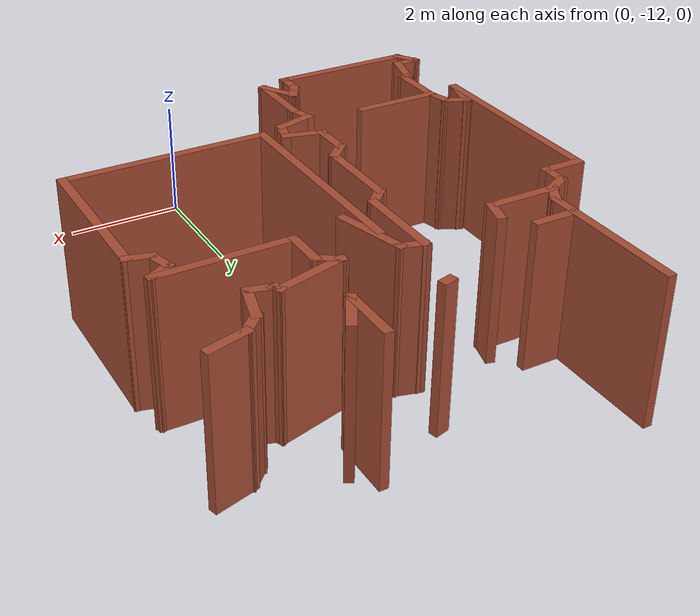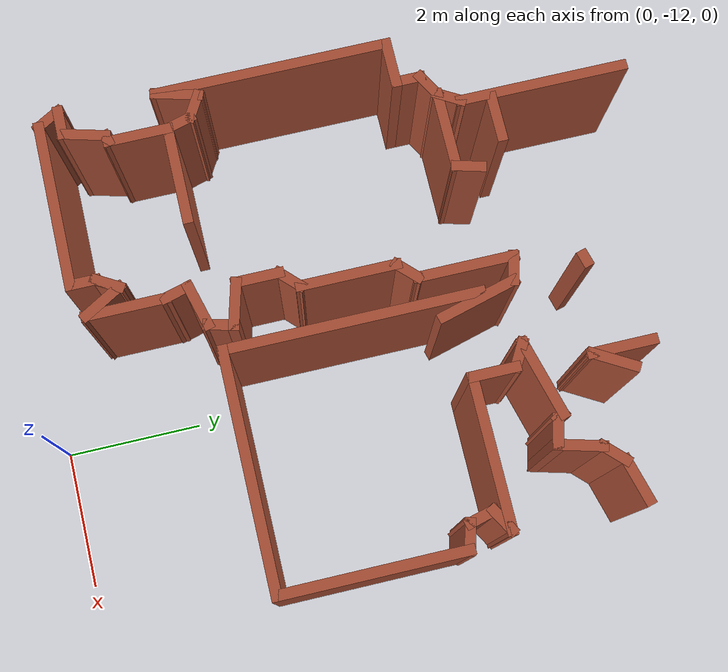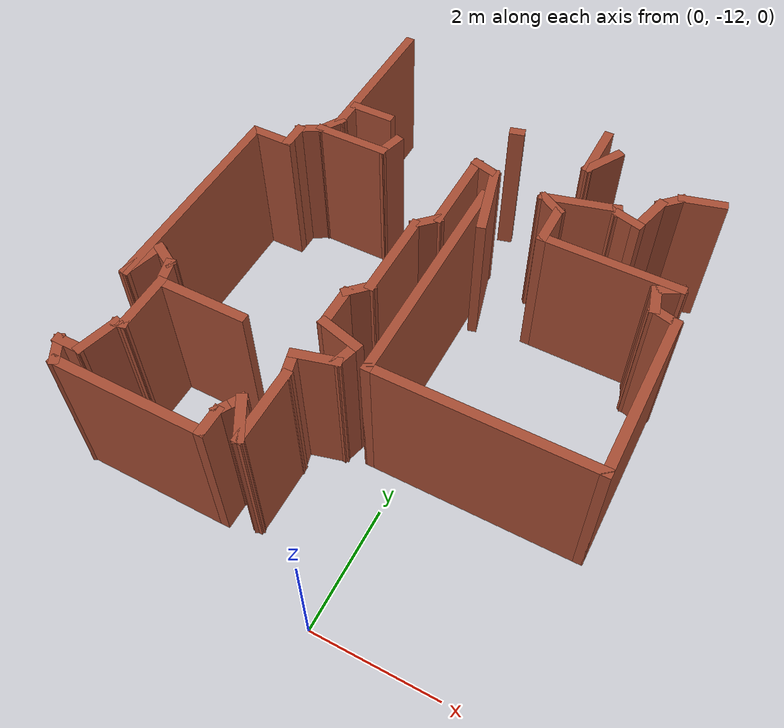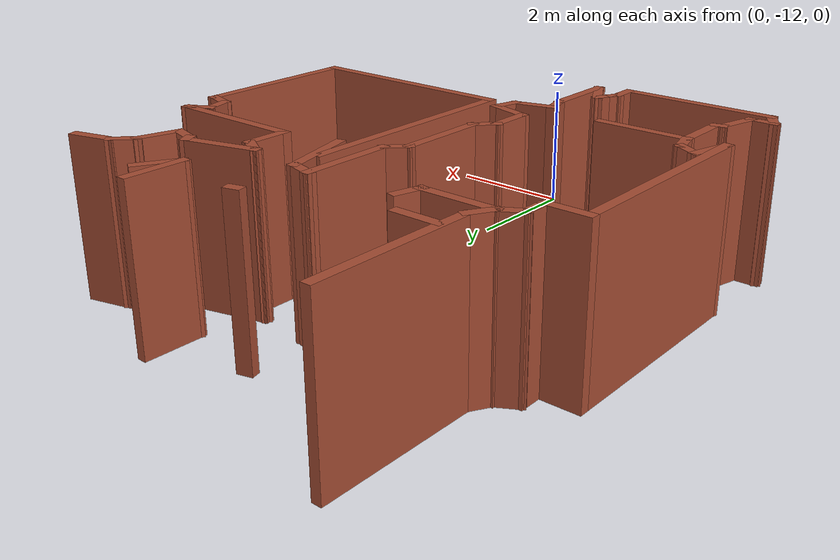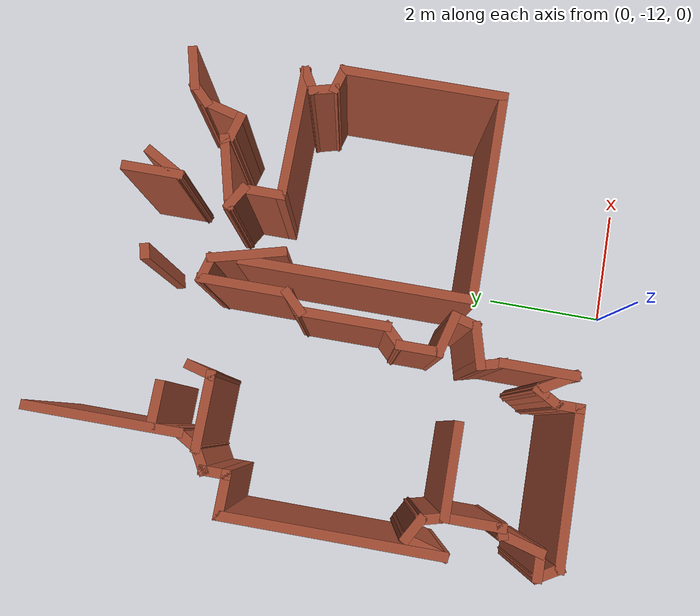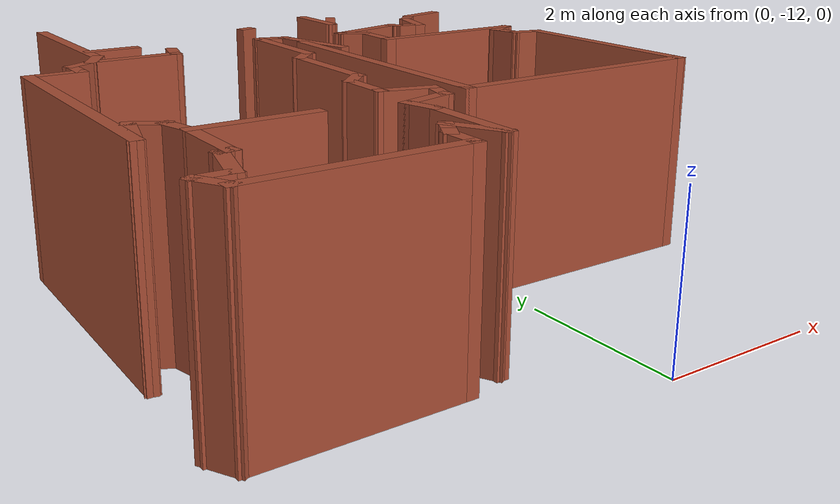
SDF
<sdf version="1.6">
 <model name="map_10">
  <pose>-0.789034 -4.23581 0 0 -0 0</pose>
  <link name="Wall_133">
   <collision name="Wall_133_Collision">
    <geometry><box><size>0.75 0.15 2.5</size></box></geometry>
    <pose>0 0 1.25 0 -0 0</pose>
   </collision>
   <visual name="Wall_133_Visual">
    <pose>0 0 1.25 0 -0 0</pose>
    <geometry><box><size>0.75 0.15 2.5</size></box></geometry>
    <material>
     <script><uri>file://media/materials/scripts/gazebo.material</uri><name>Gazebo/Bricks</name></script>
     <ambient>1 1 1 1</ambient>
    </material>
    <meta><layer>0</layer></meta>
   </visual>
   <pose>-2.13456 -0.630637 0 0 -0 0</pose>
  </link>
  <link name="Wall_138">
   <collision name="Wall_138_Collision">
    <geometry><box><size>1.25 0.15 2.5</size></box></geometry>
    <pose>0 0 1.25 0 -0 0</pose>
   </collision>
   <visual name="Wall_138_Visual">
    <pose>0 0 1.25 0 -0 0</pose>
    <geometry><box><size>1.25 0.15 2.5</size></box></geometry>
    <material>
     <script><uri>file://media/materials/scripts/gazebo.material</uri><name>Gazebo/Bricks</name></script>
     <ambient>1 1 1 1</ambient>
    </material>
    <meta><layer>0</layer></meta>
   </visual>
   <pose>-2.10512 -1.36197 0 0 -0 0</pose>
  </link>
  <link name="Wall_139">
   <collision name="Wall_139_Collision">
    <geometry><box><size>0.5 0.15 2.5</size></box></geometry>
    <pose>0 0 1.25 0 -0 0</pose>
   </collision>
   <visual name="Wall_139_Visual">
    <pose>0 0 1.25 0 -0 0</pose>
    <geometry><box><size>0.5 0.15 2.5</size></box></geometry>
    <material>
     <script><uri>file://media/materials/scripts/gazebo.material</uri><name>Gazebo/Bricks</name></script>
     <ambient>1 1 1 1</ambient>
    </material>
    <meta><layer>0</layer></meta>
   </visual>
   <pose>-1.50982 -1.19293 0 0 -0 1.309</pose>
  </link>
  <link name="Wall_143">
   <collision name="Wall_143_Collision">
    <geometry><box><size>1.5 0.15 2.5</size></box></geometry>
    <pose>0 0 1.25 0 -0 0</pose>
   </collision>
   <visual name="Wall_143_Visual">
    <pose>0 0 1.25 0 -0 0</pose>
    <geometry><box><size>1.5 0.15 2.5</size></box></geometry>
    <material>
     <script><uri>file://media/materials/scripts/gazebo.material</uri><name>Gazebo/Bricks</name></script>
     <ambient>1 1 1 1</ambient>
    </material>
    <meta><layer>0</layer></meta>
   </visual>
   <pose>-2.33424 -5.17049 0 0 -0 0</pose>
  </link>
  <link name="Wall_30">
   <collision name="Wall_30_Collision">
    <geometry><box><size>2.5 0.15 2.5</size></box></geometry>
    <pose>0 0 1.25 0 -0 0</pose>
   </collision>
   <visual name="Wall_30_Visual">
    <pose>0 0 1.25 0 -0 0</pose>
    <geometry><box><size>2.5 0.15 2.5</size></box></geometry>
    <material>
     <script><uri>file://media/materials/scripts/gazebo.material</uri><name>Gazebo/Bricks</name></script>
     <ambient>1 1 1 1</ambient>
    </material>
    <meta><layer>0</layer></meta>
   </visual>
   <pose>-2.48012 0.116139 0 0 -0 -1.5708</pose>
  </link>
  <link name="Wall_31">
   <collision name="Wall_31_Collision">
    <geometry><box><size>0.5 0.15 2.5</size></box></geometry>
    <pose>0 0 1.25 0 -0 0</pose>
   </collision>
   <visual name="Wall_31_Visual">
    <pose>0 0 1.25 0 -0 0</pose>
    <geometry><box><size>0.5 0.15 2.5</size></box></geometry>
    <material>
     <script><uri>file://media/materials/scripts/gazebo.material</uri><name>Gazebo/Bricks</name></script>
     <ambient>1 1 1 1</ambient>
    </material>
    <meta><layer>0</layer></meta>
   </visual>
   <pose>-2.56761 -1.21042 0 0 -0 -2.0944</pose>
  </link>
  <link name="Wall_32">
   <collision name="Wall_32_Collision">
    <geometry><box><size>0.5 0.15 2.5</size></box></geometry>
    <pose>0 0 1.25 0 -0 0</pose>
   </collision>
   <visual name="Wall_32_Visual">
    <pose>0 0 1.25 0 -0 0</pose>
    <geometry><box><size>0.5 0.15 2.5</size></box></geometry>
    <material>
     <script><uri>file://media/materials/scripts/gazebo.material</uri><name>Gazebo/Bricks</name></script>
     <ambient>1 1 1 1</ambient>
    </material>
    <meta><layer>0</layer></meta>
   </visual>
   <pose>-2.80667 -1.44947 0 0 -0 -2.61799</pose>
  </link>
  <link name="Wall_33">
   <collision name="Wall_33_Collision">
    <geometry><box><size>0.5 0.15 2.5</size></box></geometry>
    <pose>0 0 1.25 0 -0 0</pose>
   </collision>
   <visual name="Wall_33_Visual">
    <pose>0 0 1.25 0 -0 0</pose>
    <geometry><box><size>0.5 0.15 2.5</size></box></geometry>
    <material>
     <script><uri>file://media/materials/scripts/gazebo.material</uri><name>Gazebo/Bricks</name></script>
     <ambient>1 1 1 1</ambient>
    </material>
    <meta><layer>0</layer></meta>
   </visual>
   <pose>-2.95822 -1.71197 0 0 -0 -1.5708</pose>
  </link>
  <link name="Wall_36">
   <collision name="Wall_36_Collision">
    <geometry><box><size>0.75 0.15 2.5</size></box></geometry>
    <pose>0 0 1.25 0 -0 0</pose>
   </collision>
   <visual name="Wall_36_Visual">
    <pose>0 0 1.25 0 -0 0</pose>
    <geometry><box><size>0.75 0.15 2.5</size></box></geometry>
    <material>
     <script><uri>file://media/materials/scripts/gazebo.material</uri><name>Gazebo/Bricks</name></script>
     <ambient>1 1 1 1</ambient>
    </material>
    <meta><layer>0</layer></meta>
   </visual>
   <pose>-3.25822 -1.88697 0 0 -0 3.14159</pose>
  </link>
  <link name="Wall_37">
   <collision name="Wall_37_Collision">
    <geometry><box><size>3.5 0.15 2.5</size></box></geometry>
    <pose>0 0 1.25 0 -0 0</pose>
   </collision>
   <visual name="Wall_37_Visual">
    <pose>0 0 1.25 0 -0 0</pose>
    <geometry><box><size>3.5 0.15 2.5</size></box></geometry>
    <material>
     <script><uri>file://media/materials/scripts/gazebo.material</uri><name>Gazebo/Bricks</name></script>
     <ambient>1 1 1 1</ambient>
    </material>
    <meta><layer>0</layer></meta>
   </visual>
   <pose>-3.55822 -3.56197 0 0 -0 -1.5708</pose>
  </link>
  <link name="Wall_38">
   <collision name="Wall_38_Collision">
    <geometry><box><size>0.75 0.15 2.5</size></box></geometry>
    <pose>0 0 1.25 0 -0 0</pose>
   </collision>
   <visual name="Wall_38_Visual">
    <pose>0 0 1.25 0 -0 0</pose>
    <geometry><box><size>0.75 0.15 2.5</size></box></geometry>
    <material>
     <script><uri>file://media/materials/scripts/gazebo.material</uri><name>Gazebo/Bricks</name></script>
     <ambient>1 1 1 1</ambient>
    </material>
    <meta><layer>0</layer></meta>
   </visual>
   <pose>-3.48058 -4.94719 0 0 -0 1.309</pose>
  </link>
  <link name="Wall_39">
   <collision name="Wall_39_Collision">
    <geometry><box><size>0.5 0.15 2.5</size></box></geometry>
    <pose>0 0 1.25 0 -0 0</pose>
   </collision>
   <visual name="Wall_39_Visual">
    <pose>0 0 1.25 0 -0 0</pose>
    <geometry><box><size>0.5 0.15 2.5</size></box></geometry>
    <material>
     <script><uri>file://media/materials/scripts/gazebo.material</uri><name>Gazebo/Bricks</name></script>
     <ambient>1 1 1 1</ambient>
    </material>
    <meta><layer>0</layer></meta>
   </visual>
   <pose>-3.25138 -4.74491 0 0 -0 -0.523599</pose>
  </link>
  <link name="Wall_40">
   <collision name="Wall_40_Collision">
    <geometry><box><size>0.5 0.15 2.5</size></box></geometry>
    <pose>0 0 1.25 0 -0 0</pose>
   </collision>
   <visual name="Wall_40_Visual">
    <pose>0 0 1.25 0 -0 0</pose>
    <geometry><box><size>0.5 0.15 2.5</size></box></geometry>
    <material>
     <script><uri>file://media/materials/scripts/gazebo.material</uri><name>Gazebo/Bricks</name></script>
     <ambient>1 1 1 1</ambient>
    </material>
    <meta><layer>0</layer></meta>
   </visual>
   <pose>-3.05453 -5.00145 0 0 -0 -1.309</pose>
  </link>
  <link name="Wall_41">
   <collision name="Wall_41_Collision">
    <geometry><box><size>1 0.15 2.5</size></box></geometry>
    <pose>0 0 1.25 0 -0 0</pose>
   </collision>
   <visual name="Wall_41_Visual">
    <pose>0 0 1.25 0 -0 0</pose>
    <geometry><box><size>1 0.15 2.5</size></box></geometry>
    <material>
     <script><uri>file://media/materials/scripts/gazebo.material</uri><name>Gazebo/Bricks</name></script>
     <ambient>1 1 1 1</ambient>
    </material>
    <meta><layer>0</layer></meta>
   </visual>
   <pose>-3.00924 -5.59549 0 0 -0 -1.5708</pose>
  </link>
  <link name="Wall_44">
   <collision name="Wall_44_Collision">
    <geometry><box><size>0.25 0.15 2.5</size></box></geometry>
    <pose>0 0 1.25 0 -0 0</pose>
   </collision>
   <visual name="Wall_44_Visual">
    <pose>0 0 1.25 0 -0 0</pose>
    <geometry><box><size>0.25 0.15 2.5</size></box></geometry>
    <material>
     <script><uri>file://media/materials/scripts/gazebo.material</uri><name>Gazebo/Bricks</name></script>
     <ambient>1 1 1 1</ambient>
    </material>
    <meta><layer>0</layer></meta>
   </visual>
   <pose>-3.05753 -6.03343 0 0 -0 -2.87979</pose>
  </link>
  <link name="Wall_45">
   <collision name="Wall_45_Collision">
    <geometry><box><size>0.75 0.15 2.5</size></box></geometry>
    <pose>0 0 1.25 0 -0 0</pose>
   </collision>
   <visual name="Wall_45_Visual">
    <pose>0 0 1.25 0 -0 0</pose>
    <geometry><box><size>0.75 0.15 2.5</size></box></geometry>
    <material>
     <script><uri>file://media/materials/scripts/gazebo.material</uri><name>Gazebo/Bricks</name></script>
     <ambient>1 1 1 1</ambient>
    </material>
    <meta><layer>0</layer></meta>
   </visual>
   <pose>-3.18348 -6.33615 0 0 -0 -1.8326</pose>
  </link>
  <link name="Wall_46">
   <collision name="Wall_46_Collision">
    <geometry><box><size>0.5 0.15 2.5</size></box></geometry>
    <pose>0 0 1.25 0 -0 0</pose>
   </collision>
   <visual name="Wall_46_Visual">
    <pose>0 0 1.25 0 -0 0</pose>
    <geometry><box><size>0.5 0.15 2.5</size></box></geometry>
    <material>
     <script><uri>file://media/materials/scripts/gazebo.material</uri><name>Gazebo/Bricks</name></script>
     <ambient>1 1 1 1</ambient>
    </material>
    <meta><layer>0</layer></meta>
   </visual>
   <pose>-3.43612 -6.62593 0 0 -0 3.14159</pose>
  </link>
  <link name="Wall_47">
   <collision name="Wall_47_Collision">
    <geometry><box><size>0.5 0.15 2.5</size></box></geometry>
    <pose>0 0 1.25 0 -0 0</pose>
   </collision>
   <visual name="Wall_47_Visual">
    <pose>0 0 1.25 0 -0 0</pose>
    <geometry><box><size>0.5 0.15 2.5</size></box></geometry>
    <material>
     <script><uri>file://media/materials/scripts/gazebo.material</uri><name>Gazebo/Bricks</name></script>
     <ambient>1 1 1 1</ambient>
    </material>
    <meta><layer>0</layer></meta>
   </visual>
   <pose>-3.52362 -6.77748 0 0 -0 -1.0472</pose>
  </link>
  <link name="Wall_48">
   <collision name="Wall_48_Collision">
    <geometry><box><size>2.5 0.15 2.5</size></box></geometry>
    <pose>0 0 1.25 0 -0 0</pose>
   </collision>
   <visual name="Wall_48_Visual">
    <pose>0 0 1.25 0 -0 0</pose>
    <geometry><box><size>2.5 0.15 2.5</size></box></geometry>
    <material>
     <script><uri>file://media/materials/scripts/gazebo.material</uri><name>Gazebo/Bricks</name></script>
     <ambient>1 1 1 1</ambient>
    </material>
    <meta><layer>0</layer></meta>
   </visual>
   <pose>-2.26112 -6.92903 0 0 -0 0</pose>
  </link>
  <link name="Wall_49">
   <collision name="Wall_49_Collision">
    <geometry><box><size>0.5 0.15 2.5</size></box></geometry>
    <pose>0 0 1.25 0 -0 0</pose>
   </collision>
   <visual name="Wall_49_Visual">
    <pose>0 0 1.25 0 -0 0</pose>
    <geometry><box><size>0.5 0.15 2.5</size></box></geometry>
    <material>
     <script><uri>file://media/materials/scripts/gazebo.material</uri><name>Gazebo/Bricks</name></script>
     <ambient>1 1 1 1</ambient>
    </material>
    <meta><layer>0</layer></meta>
   </visual>
   <pose>-1.08612 -6.75404 0 0 -0 1.5708</pose>
  </link>
  <link name="Wall_50">
   <collision name="Wall_50_Collision">
    <geometry><box><size>0.25 0.15 2.5</size></box></geometry>
    <pose>0 0 1.25 0 -0 0</pose>
   </collision>
   <visual name="Wall_50_Visual">
    <pose>0 0 1.25 0 -0 0</pose>
    <geometry><box><size>0.25 0.15 2.5</size></box></geometry>
    <material>
     <script><uri>file://media/materials/scripts/gazebo.material</uri><name>Gazebo/Bricks</name></script>
     <ambient>1 1 1 1</ambient>
    </material>
    <meta><layer>0</layer></meta>
   </visual>
   <pose>-1.06112 -6.53573 0 0 -0 1.0472</pose>
  </link>
  <link name="Wall_53">
   <collision name="Wall_53_Collision">
    <geometry><box><size>0.5 0.15 2.5</size></box></geometry>
    <pose>0 0 1.25 0 -0 0</pose>
   </collision>
   <visual name="Wall_53_Visual">
    <pose>0 0 1.25 0 -0 0</pose>
    <geometry><box><size>0.5 0.15 2.5</size></box></geometry>
    <material>
     <script><uri>file://media/materials/scripts/gazebo.material</uri><name>Gazebo/Bricks</name></script>
     <ambient>1 1 1 1</ambient>
    </material>
    <meta><layer>0</layer></meta>
   </visual>
   <pose>-0.998621 -6.42748 0 0 -0 1.0472</pose>
  </link>
  <link name="Wall_54">
   <collision name="Wall_54_Collision">
    <geometry><box><size>0.75 0.15 2.5</size></box></geometry>
    <pose>0 0 1.25 0 -0 0</pose>
   </collision>
   <visual name="Wall_54_Visual">
    <pose>0 0 1.25 0 -0 0</pose>
    <geometry><box><size>0.75 0.15 2.5</size></box></geometry>
    <material>
     <script><uri>file://media/materials/scripts/gazebo.material</uri><name>Gazebo/Bricks</name></script>
     <ambient>1 1 1 1</ambient>
    </material>
    <meta><layer>0</layer></meta>
   </visual>
   <pose>-0.761121 -6.53573 0 0 -0 -1.0472</pose>
  </link>
  <link name="Wall_55">
   <collision name="Wall_55_Collision">
    <geometry><box><size>1.25 0.15 2.5</size></box></geometry>
    <pose>0 0 1.25 0 -0 0</pose>
   </collision>
   <visual name="Wall_55_Visual">
    <pose>0 0 1.25 0 -0 0</pose>
    <geometry><box><size>1.25 0.15 2.5</size></box></geometry>
    <material>
     <script><uri>file://media/materials/scripts/gazebo.material</uri><name>Gazebo/Bricks</name></script>
     <ambient>1 1 1 1</ambient>
    </material>
    <meta><layer>0</layer></meta>
   </visual>
   <pose>-0.611121 -6.24554 0 0 -0 1.5708</pose>
  </link>
  <link name="Wall_56">
   <collision name="Wall_56_Collision">
    <geometry><box><size>0.5 0.15 2.5</size></box></geometry>
    <pose>0 0 1.25 0 -0 0</pose>
   </collision>
   <visual name="Wall_56_Visual">
    <pose>0 0 1.25 0 -0 0</pose>
    <geometry><box><size>0.5 0.15 2.5</size></box></geometry>
    <material>
     <script><uri>file://media/materials/scripts/gazebo.material</uri><name>Gazebo/Bricks</name></script>
     <ambient>1 1 1 1</ambient>
    </material>
    <meta><layer>0</layer></meta>
   </visual>
   <pose>-0.656414 -5.5265 0 0 -0 1.8326</pose>
  </link>
  <link name="Wall_57">
   <collision name="Wall_57_Collision">
    <geometry><box><size>0.75 0.15 2.5</size></box></geometry>
    <pose>0 0 1.25 0 -0 0</pose>
   </collision>
   <visual name="Wall_57_Visual">
    <pose>0 0 1.25 0 -0 0</pose>
    <geometry><box><size>0.75 0.15 2.5</size></box></geometry>
    <material>
     <script><uri>file://media/materials/scripts/gazebo.material</uri><name>Gazebo/Bricks</name></script>
     <ambient>1 1 1 1</ambient>
    </material>
    <meta><layer>0</layer></meta>
   </visual>
   <pose>-0.41193 -5.27982 0 0 -0 0.261799</pose>
  </link>
  <link name="Wall_58">
   <collision name="Wall_58_Collision">
    <geometry><box><size>0.5 0.15 2.5</size></box></geometry>
    <pose>0 0 1.25 0 -0 0</pose>
   </collision>
   <visual name="Wall_58_Visual">
    <pose>0 0 1.25 0 -0 0</pose>
    <geometry><box><size>0.5 0.15 2.5</size></box></geometry>
    <material>
     <script><uri>file://media/materials/scripts/gazebo.material</uri><name>Gazebo/Bricks</name></script>
     <ambient>1 1 1 1</ambient>
    </material>
    <meta><layer>0</layer></meta>
   </visual>
   <pose>-0.076859 -5.03314 0 0 -0 1.309</pose>
  </link>
  <link name="Wall_59">
   <collision name="Wall_59_Collision">
    <geometry><box><size>0.75 0.15 2.5</size></box></geometry>
    <pose>0 0 1.25 0 -0 0</pose>
   </collision>
   <visual name="Wall_59_Visual">
    <pose>0 0 1.25 0 -0 0</pose>
    <geometry><box><size>0.75 0.15 2.5</size></box></geometry>
    <material>
     <script><uri>file://media/materials/scripts/gazebo.material</uri><name>Gazebo/Bricks</name></script>
     <ambient>1 1 1 1</ambient>
    </material>
    <meta><layer>0</layer></meta>
   </visual>
   <pose>-0.321343 -4.78646 0 0 -0 2.87979</pose>
  </link>
  <link name="Wall_60">
   <collision name="Wall_60_Collision">
    <geometry><box><size>0.75 0.15 2.5</size></box></geometry>
    <pose>0 0 1.25 0 -0 0</pose>
   </collision>
   <visual name="Wall_60_Visual">
    <pose>0 0 1.25 0 -0 0</pose>
    <geometry><box><size>0.75 0.15 2.5</size></box></geometry>
    <material>
     <script><uri>file://media/materials/scripts/gazebo.material</uri><name>Gazebo/Bricks</name></script>
     <ambient>1 1 1 1</ambient>
    </material>
    <meta><layer>0</layer></meta>
   </visual>
   <pose>-0.611121 -4.40881 0 0 -0 1.5708</pose>
  </link>
  <link name="Wall_61">
   <collision name="Wall_61_Collision">
    <geometry><box><size>0.5 0.15 2.5</size></box></geometry>
    <pose>0 0 1.25 0 -0 0</pose>
   </collision>
   <visual name="Wall_61_Visual">
    <pose>0 0 1.25 0 -0 0</pose>
    <geometry><box><size>0.5 0.15 2.5</size></box></geometry>
    <material>
     <script><uri>file://media/materials/scripts/gazebo.material</uri><name>Gazebo/Bricks</name></script>
     <ambient>1 1 1 1</ambient>
    </material>
    <meta><layer>0</layer></meta>
   </visual>
   <pose>-0.487377 -3.98507 0 0 -0 0.785398</pose>
  </link>
  <link name="Wall_62">
   <collision name="Wall_62_Collision">
    <geometry><box><size>1.5 0.15 2.5</size></box></geometry>
    <pose>0 0 1.25 0 -0 0</pose>
   </collision>
   <visual name="Wall_62_Visual">
    <pose>0 0 1.25 0 -0 0</pose>
    <geometry><box><size>1.5 0.15 2.5</size></box></geometry>
    <material>
     <script><uri>file://media/materials/scripts/gazebo.material</uri><name>Gazebo/Bricks</name></script>
     <ambient>1 1 1 1</ambient>
    </material>
    <meta><layer>0</layer></meta>
   </visual>
   <pose>-0.363634 -3.18632 0 0 -0 1.5708</pose>
  </link>
  <link name="Wall_63">
   <collision name="Wall_63_Collision">
    <geometry><box><size>0.5 0.15 2.5</size></box></geometry>
    <pose>0 0 1.25 0 -0 0</pose>
   </collision>
   <visual name="Wall_63_Visual">
    <pose>0 0 1.25 0 -0 0</pose>
    <geometry><box><size>0.5 0.15 2.5</size></box></geometry>
    <material>
     <script><uri>file://media/materials/scripts/gazebo.material</uri><name>Gazebo/Bricks</name></script>
     <ambient>1 1 1 1</ambient>
    </material>
    <meta><layer>0</layer></meta>
   </visual>
   <pose>-0.23989 -2.38758 0 0 -0 0.785398</pose>
  </link>
  <link name="Wall_64">
   <collision name="Wall_64_Collision">
    <geometry><box><size>1.5 0.15 2.5</size></box></geometry>
    <pose>0 0 1.25 0 -0 0</pose>
   </collision>
   <visual name="Wall_64_Visual">
    <pose>0 0 1.25 0 -0 0</pose>
    <geometry><box><size>1.5 0.15 2.5</size></box></geometry>
    <material>
     <script><uri>file://media/materials/scripts/gazebo.material</uri><name>Gazebo/Bricks</name></script>
     <ambient>1 1 1 1</ambient>
    </material>
    <meta><layer>0</layer></meta>
   </visual>
   <pose>-0.116146 -1.58884 0 0 -0 1.5708</pose>
  </link>
  <link name="Wall_65">
   <collision name="Wall_65_Collision">
    <geometry><box><size>0.5 0.15 2.5</size></box></geometry>
    <pose>0 0 1.25 0 -0 0</pose>
   </collision>
   <visual name="Wall_65_Visual">
    <pose>0 0 1.25 0 -0 0</pose>
    <geometry><box><size>0.5 0.15 2.5</size></box></geometry>
    <material>
     <script><uri>file://media/materials/scripts/gazebo.material</uri><name>Gazebo/Bricks</name></script>
     <ambient>1 1 1 1</ambient>
    </material>
    <meta><layer>0</layer></meta>
   </visual>
   <pose>0.052891 -0.959129 0 0 -0 -0.261799</pose>
  </link>
  <link name="Wall_66">
   <collision name="Wall_66_Collision">
    <geometry><box><size>1.25 0.15 2.5</size></box></geometry>
    <pose>0 0 1.25 0 -0 0</pose>
   </collision>
   <visual name="Wall_66_Visual">
    <pose>0 0 1.25 0 -0 0</pose>
    <geometry><box><size>1.25 0.15 2.5</size></box></geometry>
    <material>
     <script><uri>file://media/materials/scripts/gazebo.material</uri><name>Gazebo/Bricks</name></script>
     <ambient>1 1 1 1</ambient>
    </material>
    <meta><layer>0</layer></meta>
   </visual>
   <pose>0.364278 -1.53568 0 0 -0 -1.309</pose>
  </link>
  <link name="Wall_68">
   <collision name="Wall_68_Collision">
    <geometry><box><size>3.75 0.15 2.5</size></box></geometry>
    <pose>0 0 1.25 0 -0 0</pose>
   </collision>
   <visual name="Wall_68_Visual">
    <pose>0 0 1.25 0 -0 0</pose>
    <geometry><box><size>3.75 0.15 2.5</size></box></geometry>
    <material>
     <script><uri>file://media/materials/scripts/gazebo.material</uri><name>Gazebo/Bricks</name></script>
     <ambient>1 1 1 1</ambient>
    </material>
    <meta><layer>0</layer></meta>
   </visual>
   <pose>0.271717 -3.28647 0 0 -0 -1.5708</pose>
  </link>
  <link name="Wall_69">
   <collision name="Wall_69_Collision">
    <geometry><box><size>3.5 0.15 2.5</size></box></geometry>
    <pose>0 0 1.25 0 -0 0</pose>
   </collision>
   <visual name="Wall_69_Visual">
    <pose>0 0 1.25 0 -0 0</pose>
    <geometry><box><size>3.5 0.15 2.5</size></box></geometry>
    <material>
     <script><uri>file://media/materials/scripts/gazebo.material</uri><name>Gazebo/Bricks</name></script>
     <ambient>1 1 1 1</ambient>
    </material>
    <meta><layer>0</layer></meta>
   </visual>
   <pose>1.94672 -5.08647 0 0 -0 0</pose>
  </link>
  <link name="Wall_70">
   <collision name="Wall_70_Collision">
    <geometry><box><size>2.75 0.15 2.5</size></box></geometry>
    <pose>0 0 1.25 0 -0 0</pose>
   </collision>
   <visual name="Wall_70_Visual">
    <pose>0 0 1.25 0 -0 0</pose>
    <geometry><box><size>2.75 0.15 2.5</size></box></geometry>
    <material>
     <script><uri>file://media/materials/scripts/gazebo.material</uri><name>Gazebo/Bricks</name></script>
     <ambient>1 1 1 1</ambient>
    </material>
    <meta><layer>0</layer></meta>
   </visual>
   <pose>3.62172 -3.78647 0 0 -0 1.5708</pose>
  </link>
  <link name="Wall_71">
   <collision name="Wall_71_Collision">
    <geometry><box><size>0.5 0.15 2.5</size></box></geometry>
    <pose>0 0 1.25 0 -0 0</pose>
   </collision>
   <visual name="Wall_71_Visual">
    <pose>0 0 1.25 0 -0 0</pose>
    <geometry><box><size>0.5 0.15 2.5</size></box></geometry>
    <material>
     <script><uri>file://media/materials/scripts/gazebo.material</uri><name>Gazebo/Bricks</name></script>
     <ambient>1 1 1 1</ambient>
    </material>
    <meta><layer>0</layer></meta>
   </visual>
   <pose>3.45268 -2.44117 0 0 -0 2.87979</pose>
  </link>
  <link name="Wall_72">
   <collision name="Wall_72_Collision">
    <geometry><box><size>0.5 0.15 2.5</size></box></geometry>
    <pose>0 0 1.25 0 -0 0</pose>
   </collision>
   <visual name="Wall_72_Visual">
    <pose>0 0 1.25 0 -0 0</pose>
    <geometry><box><size>0.5 0.15 2.5</size></box></geometry>
    <material>
     <script><uri>file://media/materials/scripts/gazebo.material</uri><name>Gazebo/Bricks</name></script>
     <ambient>1 1 1 1</ambient>
    </material>
    <meta><layer>0</layer></meta>
   </visual>
   <pose>3.23835 -2.22684 0 0 -0 1.8326</pose>
  </link>
  <link name="Wall_73">
   <collision name="Wall_73_Collision">
    <geometry><box><size>0.5 0.15 2.5</size></box></geometry>
    <pose>0 0 1.25 0 -0 0</pose>
   </collision>
   <visual name="Wall_73_Visual">
    <pose>0 0 1.25 0 -0 0</pose>
    <geometry><box><size>0.5 0.15 2.5</size></box></geometry>
    <material>
     <script><uri>file://media/materials/scripts/gazebo.material</uri><name>Gazebo/Bricks</name></script>
     <ambient>1 1 1 1</ambient>
    </material>
    <meta><layer>0</layer></meta>
   </visual>
   <pose>3.34461 -1.97031 0 0 -0 0.523599</pose>
  </link>
  <link name="Wall_74">
   <collision name="Wall_74_Collision">
    <geometry><box><size>2.25 0.15 2.5</size></box></geometry>
    <pose>0 0 1.25 0 -0 0</pose>
   </collision>
   <visual name="Wall_74_Visual">
    <pose>0 0 1.25 0 -0 0</pose>
    <geometry><box><size>2.25 0.15 2.5</size></box></geometry>
    <material>
     <script><uri>file://media/materials/scripts/gazebo.material</uri><name>Gazebo/Bricks</name></script>
     <ambient>1 1 1 1</ambient>
    </material>
    <meta><layer>0</layer></meta>
   </visual>
   <pose>2.44617 -1.88281 0 0 -0 3.14159</pose>
  </link>
  <link name="Wall_75">
   <collision name="Wall_75_Collision">
    <geometry><box><size>0.75 0.15 2.5</size></box></geometry>
    <pose>0 0 1.25 0 -0 0</pose>
   </collision>
   <visual name="Wall_75_Visual">
    <pose>0 0 1.25 0 -0 0</pose>
    <geometry><box><size>0.75 0.15 2.5</size></box></geometry>
    <material>
     <script><uri>file://media/materials/scripts/gazebo.material</uri><name>Gazebo/Bricks</name></script>
     <ambient>1 1 1 1</ambient>
    </material>
    <meta><layer>0</layer></meta>
   </visual>
   <pose>1.39617 -1.58281 0 0 -0 1.5708</pose>
  </link>
  <link name="Wall_76">
   <collision name="Wall_76_Collision">
    <geometry><box><size>0.5 0.15 2.5</size></box></geometry>
    <pose>0 0 1.25 0 -0 0</pose>
   </collision>
   <visual name="Wall_76_Visual">
    <pose>0 0 1.25 0 -0 0</pose>
    <geometry><box><size>0.5 0.15 2.5</size></box></geometry>
    <material>
     <script><uri>file://media/materials/scripts/gazebo.material</uri><name>Gazebo/Bricks</name></script>
     <ambient>1 1 1 1</ambient>
    </material>
    <meta><layer>0</layer></meta>
   </visual>
   <pose>1.24461 -1.19531 0 0 -0 2.61799</pose>
  </link>
  <link name="Wall_77">
   <collision name="Wall_77_Collision">
    <geometry><box><size>0.15 0.15 2.5</size></box></geometry>
    <pose>0 0 1.25 0 -0 0</pose>
   </collision>
   <visual name="Wall_77_Visual">
    <pose>0 0 1.25 0 -0 0</pose>
    <geometry><box><size>0.15 0.15 2.5</size></box></geometry>
    <material>
     <script><uri>file://media/materials/scripts/gazebo.material</uri><name>Gazebo/Bricks</name></script>
     <ambient>1 1 1 1</ambient>
    </material>
    <meta><layer>0</layer></meta>
   </visual>
   <pose>1.09306 -1.10781 0 0 -0 0</pose>
  </link>
  <link name="Wall_78">
   <collision name="Wall_78_Collision">
    <geometry><box><size>1.25 0.15 2.5</size></box></geometry>
    <pose>0 0 1.25 0 -0 0</pose>
   </collision>
   <visual name="Wall_78_Visual">
    <pose>0 0 1.25 0 -0 0</pose>
    <geometry><box><size>1.25 0.15 2.5</size></box></geometry>
    <material>
     <script><uri>file://media/materials/scripts/gazebo.material</uri><name>Gazebo/Bricks</name></script>
     <ambient>1 1 1 1</ambient>
    </material>
    <meta><layer>0</layer></meta>
   </visual>
   <pose>1.62432 -0.965458 0 0 -0 0.261799</pose>
  </link>
  <link name="Wall_79">
   <collision name="Wall_79_Collision">
    <geometry><box><size>0.25 0.15 2.5</size></box></geometry>
    <pose>0 0 1.25 0 -0 0</pose>
   </collision>
   <visual name="Wall_79_Visual">
    <pose>0 0 1.25 0 -0 0</pose>
    <geometry><box><size>0.25 0.15 2.5</size></box></geometry>
    <material>
     <script><uri>file://media/materials/scripts/gazebo.material</uri><name>Gazebo/Bricks</name></script>
     <ambient>1 1 1 1</ambient>
    </material>
    <meta><layer>0</layer></meta>
   </visual>
   <pose>2.18058 -0.866409 0 0 -0 -1.0472</pose>
  </link>
  <link name="Wall_80">
   <collision name="Wall_80_Collision">
    <geometry><box><size>0.5 0.15 2.5</size></box></geometry>
    <pose>0 0 1.25 0 -0 0</pose>
   </collision>
   <visual name="Wall_80_Visual">
    <pose>0 0 1.25 0 -0 0</pose>
    <geometry><box><size>0.5 0.15 2.5</size></box></geometry>
    <material>
     <script><uri>file://media/materials/scripts/gazebo.material</uri><name>Gazebo/Bricks</name></script>
     <ambient>1 1 1 1</ambient>
    </material>
    <meta><layer>0</layer></meta>
   </visual>
   <pose>2.37461 -0.955003 0 0 -0 -0.261799</pose>
  </link>
  <link name="Wall_81">
   <collision name="Wall_81_Collision">
    <geometry><box><size>0.75 0.15 2.5</size></box></geometry>
    <pose>0 0 1.25 0 -0 0</pose>
   </collision>
   <visual name="Wall_81_Visual">
    <pose>0 0 1.25 0 -0 0</pose>
    <geometry><box><size>0.75 0.15 2.5</size></box></geometry>
    <material>
     <script><uri>file://media/materials/scripts/gazebo.material</uri><name>Gazebo/Bricks</name></script>
     <ambient>1 1 1 1</ambient>
    </material>
    <meta><layer>0</layer></meta>
   </visual>
   <pose>2.62129 -0.710519 0 0 -0 1.309</pose>
  </link>
  <link name="Wall_82">
   <collision name="Wall_82_Collision">
    <geometry><box><size>0.5 0.15 2.5</size></box></geometry>
    <pose>0 0 1.25 0 -0 0</pose>
   </collision>
   <visual name="Wall_82_Visual">
    <pose>0 0 1.25 0 -0 0</pose>
    <geometry><box><size>0.5 0.15 2.5</size></box></geometry>
    <material>
     <script><uri>file://media/materials/scripts/gazebo.material</uri><name>Gazebo/Bricks</name></script>
     <ambient>1 1 1 1</ambient>
    </material>
    <meta><layer>0</layer></meta>
   </visual>
   <pose>2.82268 -0.296998 0 0 -0 0.785398</pose>
  </link>
  <link name="Wall_83">
   <collision name="Wall_83_Collision">
    <geometry><box><size>0.75 0.15 2.5</size></box></geometry>
    <pose>0 0 1.25 0 -0 0</pose>
   </collision>
   <visual name="Wall_83_Visual">
    <pose>0 0 1.25 0 -0 0</pose>
    <geometry><box><size>0.75 0.15 2.5</size></box></geometry>
    <material>
     <script><uri>file://media/materials/scripts/gazebo.material</uri><name>Gazebo/Bricks</name></script>
     <ambient>1 1 1 1</ambient>
    </material>
    <meta><layer>0</layer></meta>
   </visual>
   <pose>3.23621 -0.095608 0 0 -0 0.261799</pose>
  </link>
  <link name="Wall_88">
   <collision name="Wall_88_Collision">
    <geometry><box><size>0.75 0.15 2.5</size></box></geometry>
    <pose>0 0 1.25 0 -0 0</pose>
   </collision>
   <visual name="Wall_88_Visual">
    <pose>0 0 1.25 0 -0 0</pose>
    <geometry><box><size>0.75 0.15 2.5</size></box></geometry>
    <material>
     <script><uri>file://media/materials/scripts/gazebo.material</uri><name>Gazebo/Bricks</name></script>
     <ambient>1 1 1 1</ambient>
    </material>
    <meta><layer>0</layer></meta>
   </visual>
   <pose>1.59879 0.034156 0 0 -0 -2.0944</pose>
  </link>
  <link name="Wall_89">
   <collision name="Wall_89_Collision">
    <geometry><box><size>1 0.15 2.5</size></box></geometry>
    <pose>0 0 1.25 0 -0 0</pose>
   </collision>
   <visual name="Wall_89_Visual">
    <pose>0 0 1.25 0 -0 0</pose>
    <geometry><box><size>1 0.15 2.5</size></box></geometry>
    <material>
     <script><uri>file://media/materials/scripts/gazebo.material</uri><name>Gazebo/Bricks</name></script>
     <ambient>1 1 1 1</ambient>
    </material>
    <meta><layer>0</layer></meta>
   </visual>
   <pose>1.44879 0.199348 0 0 -0 1.5708</pose>
  </link>
  <link name="Wall_95">
   <collision name="Wall_95_Collision">
    <geometry><box><size>0.25 0.15 2.5</size></box></geometry>
    <pose>0 0 1.25 0 -0 0</pose>
   </collision>
   <visual name="Wall_95_Visual">
    <pose>0 0 1.25 0 -0 0</pose>
    <geometry><box><size>0.25 0.15 2.5</size></box></geometry>
    <material>
     <script><uri>file://media/materials/scripts/gazebo.material</uri><name>Gazebo/Bricks</name></script>
     <ambient>1 1 1 1</ambient>
    </material>
    <meta><layer>0</layer></meta>
   </visual>
   <pose>0.145207 0.031852 0 0 -0 -2.87979</pose>
  </link>
  <static>1</static>
 </model>
</sdf>
